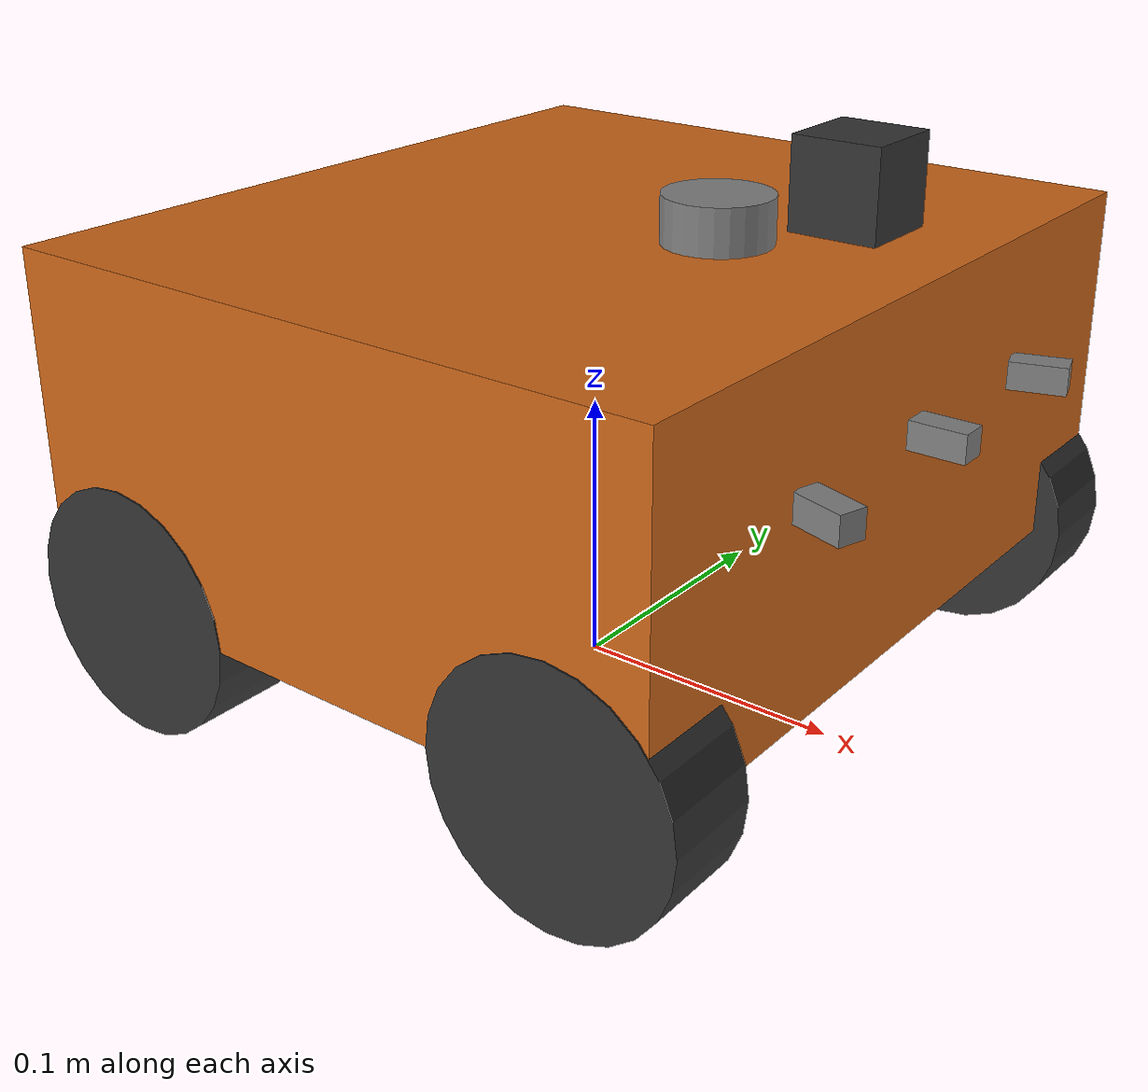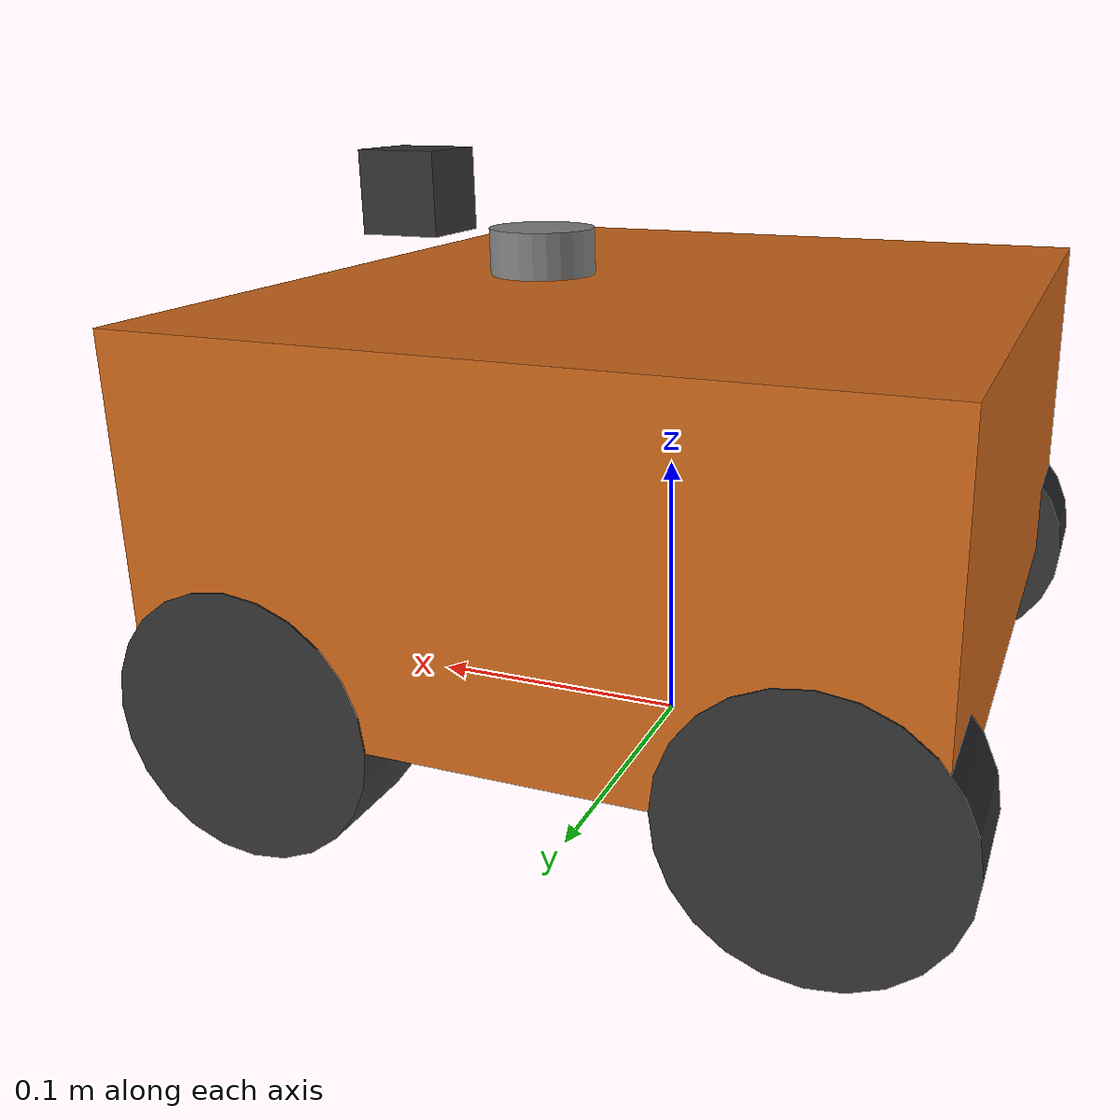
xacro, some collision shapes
<?xml version="1.0"?>
<robot xmlns:xacro="http://www.ros.org/wiki/xacro" name="slodda">

  <xacro:property name="chassis_length" value="0.250"/>
  <xacro:property name="chassis_width"  value="0.280"/>
  <xacro:property name="chassis_height" value="0.122"/>
  <xacro:property name="chassis_mass"   value="2.5"/>
  <xacro:property name="wheel_radius"   value="0.045"/>
  <xacro:property name="wheel_width"    value="0.035"/>
  <xacro:property name="wheel_x_offset" value="0.090"/>
  <xacro:property name="wheel_y_offset" value="0.123"/>

  <material name="orange">   <color rgba="0.8 0.4 0.1 1.0"/> </material>
  <material name="dark_grey"><color rgba="0.2 0.2 0.2 1.0"/> </material>
  <material name="grey">     <color rgba="0.5 0.5 0.5 1.0"/> </material>

  <link name="base_footprint"/>

  <joint name="base_footprint_joint" type="fixed">
    <parent link="base_footprint"/>
    <child link="base_link"/>
    <origin xyz="0 0 ${wheel_radius}" rpy="0 0 0"/>
  </joint>

  <link name="base_link">
    <visual>
      <origin xyz="-0.1414 -0.1000 0.0" rpy="${pi/2} 0 0"/>
      <geometry>
        <mesh filename="package://slodda_description/meshes/chassis.stl" scale="0.001 0.001 0.001"/>
      </geometry>
      <material name="orange"/>
    </visual>
    <collision>
      <origin xyz="0 0 0.061" rpy="0 0 0"/>
      <geometry>
        <box size="${chassis_length} ${chassis_width} ${chassis_height}"/>
      </geometry>
    </collision>
    <inertial>
      <mass value="${chassis_mass}"/>
      <origin xyz="0 0 0.061" rpy="0 0 0"/>
      <inertia ixx="0.0197" ixy="0.0" ixz="0.0"
               iyy="0.0164" iyz="0.0"
               izz="0.0309"/>
    </inertial>
  </link>
<!-- LD06 LiDAR -->
  <link name="lidar_link">
    <visual>
      <origin xyz="0 0 0" rpy="0 0 0"/>
      <geometry>
        <cylinder radius="0.019" length="0.033"/>
      </geometry>
      <material name="grey"/>
    </visual>
    <collision>
      <origin xyz="0 0 0" rpy="0 0 0"/>
      <geometry>
        <cylinder radius="0.019" length="0.033"/>
      </geometry>
    </collision>
    <inertial>
      <mass value="0.180"/>
      <origin xyz="0 0 0" rpy="0 0 0"/>
      <inertia ixx="0.0001" ixy="0.0" ixz="0.0"
               iyy="0.0001" iyz="0.0"
               izz="0.0001"/>
    </inertial>
  </link>

  <joint name="lidar_joint" type="fixed">
    <parent link="base_link"/>
    <child link="lidar_link"/>
    <origin xyz="0.05 0 0.122" rpy="0 0 0"/>
  </joint>

  <gazebo reference="lidar_link">
    <sensor name="ld06_lidar" type="gpu_lidar">
      <topic>scan</topic>
      <gz_frame_id>lidar_link</gz_frame_id>
      <update_rate>10</update_rate>
      <lidar>
        <scan>
          <horizontal>
            <samples>360</samples>
            <resolution>1</resolution>
            <min_angle>-3.14159</min_angle>
            <max_angle>3.14159</max_angle>
          </horizontal>
        </scan>

        <range>
          <min>0.02</min>
          <max>12.0</max>
          <resolution>0.03</resolution>
        </range>
      </lidar>
      <always_on>true</always_on>
      <visualize>true</visualize>
    </sensor>
  </gazebo>

  <xacro:macro name="wheel" params="name x y">
    <link name="${name}">
      <visual>
        <origin xyz="0 0 0" rpy="${pi/2} 0 0"/>
        <geometry>
          <cylinder radius="${wheel_radius}" length="${wheel_width}"/>
        </geometry>
        <material name="dark_grey"/>
      </visual>
      <collision>
        <origin xyz="0 0 0" rpy="${pi/2} 0 0"/>
        <geometry>
          <cylinder radius="${wheel_radius}" length="${wheel_width}"/>
        </geometry>
      </collision>
      <inertial>
        <mass value="0.15"/>
        <origin xyz="0 0 0"/>
        <inertia ixx="0.0001" ixy="0.0" ixz="0.0"
                 iyy="0.0001" iyz="0.0"
                 izz="0.0002"/>
      </inertial>
    </link>
    <joint name="${name}_joint" type="continuous">
      <parent link="base_link"/>
      <child link="${name}"/>
      <origin xyz="${x} ${y} 0" rpy="0 0 0"/>
      <axis xyz="0 1 0"/>
    </joint>
  </xacro:macro>

  <xacro:wheel name="left_front_wheel"  x=" ${wheel_x_offset}" y=" ${wheel_y_offset}"/>
  <xacro:wheel name="left_rear_wheel"   x="-${wheel_x_offset}" y=" ${wheel_y_offset}"/>
  <xacro:wheel name="right_front_wheel" x=" ${wheel_x_offset}" y="-${wheel_y_offset}"/>
  <xacro:wheel name="right_rear_wheel"  x="-${wheel_x_offset}" y="-${wheel_y_offset}"/>

  <!-- IR sensor lenker - ingen preserveFixedJoint, slik at de lumpes inn i base_link -->
  <xacro:macro name="ir_sensor" params="name x y yaw">
    <link name="${name}">
      <visual>
        <geometry><box size="0.02 0.01 0.01"/></geometry>
        <material name="grey"/>
      </visual>
      <inertial>
        <mass value="0.001"/>
        <origin xyz="0 0 0"/>
        <inertia ixx="0.000001" ixy="0.0" ixz="0.0"
                 iyy="0.000001" iyz="0.0"
                 izz="0.000001"/>
      </inertial>
    </link>
    <joint name="${name}_joint" type="fixed">
      <parent link="base_link"/>
      <child link="${name}"/>
      <origin xyz="${x} ${y} 0.075" rpy="0 0 ${yaw}"/>
    </joint>
  </xacro:macro>

  <xacro:ir_sensor name="ir_front_left"   x=" 0.135" y=" 0.07" yaw="0.3"/>
  <xacro:ir_sensor name="ir_front_center" x=" 0.135" y=" 0.00" yaw="0"/>
  <xacro:ir_sensor name="ir_front_right"  x=" 0.135" y="-0.07" yaw="-0.3"/>

  <!-- IR sensor plugins -->
  <xacro:macro name="ir_gazebo" params="name topic">
    <gazebo reference="${name}">
      <sensor name="${name}_sensor" type="gpu_lidar">
        <update_rate>10</update_rate>
        <lidar>
          <scan>
            <horizontal>
              <samples>5</samples>
              <resolution>1</resolution>
              <min_angle>-0.1</min_angle>
              <max_angle>0.1</max_angle>
            </horizontal>
          </scan>
          <range>
            <min>0.04</min>
            <max>0.30</max>
            <resolution>0.001</resolution>
          </range>
        </lidar>
        <always_on>1</always_on>
        <visualize>true</visualize>
        <topic>${topic}</topic>
      </sensor>
    </gazebo>
  </xacro:macro>

  <xacro:ir_gazebo name="ir_front_left"   topic="ir_front_left"/>
  <xacro:ir_gazebo name="ir_front_center" topic="ir_front_center"/>
  <xacro:ir_gazebo name="ir_front_right"  topic="ir_front_right"/>

  <gazebo>
    <plugin filename="gz-sim-diff-drive-system"
            name="gz::sim::systems::DiffDrive">
      <left_joint>left_front_wheel_joint</left_joint>
      <left_joint>left_rear_wheel_joint</left_joint>
      <right_joint>right_front_wheel_joint</right_joint>
      <right_joint>right_rear_wheel_joint</right_joint>
      <wheel_separation>${wheel_y_offset * 2}</wheel_separation>
      <wheel_radius>${wheel_radius}</wheel_radius>
      <max_linear_velocity>0.5</max_linear_velocity>
      <max_angular_velocity>1.0</max_angular_velocity>
      <max_linear_acceleration>1.0</max_linear_acceleration>
      <max_angular_acceleration>2.0</max_angular_acceleration>
      <odom_publish_frequency>50</odom_publish_frequency>
      <topic>cmd_vel</topic>
      <odom_topic>odom</odom_topic>
      <frame_id>odom</frame_id>
      <child_frame_id>base_footprint</child_frame_id>
      <tf_topic>/tf</tf_topic>
    </plugin>
  </gazebo>

  <xacro:macro name="wheel_gazebo" params="name">
    <gazebo reference="${name}">
      <mu1>1.5</mu1><mu2>1.5</mu2>
      <kp>1000000.0</kp><kd>100.0</kd>
      <minDepth>0.001</minDepth><maxVel>1.0</maxVel>
    </gazebo>
  </xacro:macro>

  <xacro:wheel_gazebo name="left_front_wheel"/>
  <xacro:wheel_gazebo name="left_rear_wheel"/>
  <xacro:wheel_gazebo name="right_front_wheel"/>
  <xacro:wheel_gazebo name="right_rear_wheel"/>

  <gazebo>
    <plugin filename="gz-sim-joint-state-publisher-system"
            name="gz::sim::systems::JointStatePublisher">
    </plugin>
  </gazebo>

  <!-- IMU (BNO085 9-DOF equivalent) -->
  <link name="imu_link">
    <inertial>
      <mass value="0.005"/>
      <origin xyz="0 0 0"/>
      <inertia ixx="1e-6" ixy="0" ixz="0" iyy="1e-6" iyz="0" izz="1e-6"/>
    </inertial>
  </link>

  <joint name="imu_joint" type="fixed">
    <parent link="base_link"/>
    <child link="imu_link"/>
    <origin xyz="0 0 0.061" rpy="0 0 0"/>
  </joint>

  <gazebo reference="imu_link">
    <sensor name="imu_sensor" type="imu">
      <topic>imu/data</topic>
      <gz_frame_id>imu_link</gz_frame_id>
      <update_rate>100</update_rate>
      <always_on>true</always_on>
      <imu>
        <angular_velocity>
          <x><noise type="gaussian"><mean>0</mean><stddev>0.009</stddev></noise></x>
          <y><noise type="gaussian"><mean>0</mean><stddev>0.009</stddev></noise></y>
          <z><noise type="gaussian"><mean>0</mean><stddev>0.009</stddev></noise></z>
        </angular_velocity>
        <linear_acceleration>
          <x><noise type="gaussian"><mean>0</mean><stddev>0.021</stddev></noise></x>
          <y><noise type="gaussian"><mean>0</mean><stddev>0.021</stddev></noise></y>
          <z><noise type="gaussian"><mean>0</mean><stddev>0.021</stddev></noise></z>
        </linear_acceleration>
      </imu>
    </sensor>
  </gazebo>

  <!-- Camera (Raspberry Pi Camera v2 equivalent) -->
  <link name="camera_link">
    <visual>
      <origin xyz="0 0 0" rpy="0 0 0"/>
      <geometry>
        <box size="0.03 0.03 0.03"/>
      </geometry>
      <material name="dark_grey"/>
    </visual>
    <collision>
      <origin xyz="0 0 0" rpy="0 0 0"/>
      <geometry>
        <box size="0.03 0.03 0.03"/>
      </geometry>
    </collision>
    <inertial>
      <mass value="0.05"/>
      <inertia ixx="1e-5" ixy="0" ixz="0" iyy="1e-5" iyz="0" izz="1e-5"/>
    </inertial>
  </link>

  <joint name="camera_joint" type="fixed">
    <parent link="base_link"/>
    <child link="camera_link"/>
    <origin xyz="0.1 0 0.15" rpy="0 0 0"/>
  </joint>

  <gazebo reference="camera_link">
    <sensor name="camera" type="camera">
      <pose>0 0 0 0 0 0</pose>
      <topic>camera/image_raw</topic>
      <gz_frame_id>camera_link</gz_frame_id>
      <update_rate>30</update_rate>
      <always_on>1</always_on>
      <visualize>true</visualize>
      <camera>
        <horizontal_fov>1.085</horizontal_fov>
        <image>
          <width>640</width>
          <height>480</height>
          <format>R8G8B8</format>
        </image>
        <clip>
          <near>0.05</near>
          <far>20.0</far>
        </clip>
      </camera>
    </sensor>
  </gazebo>

</robot>
